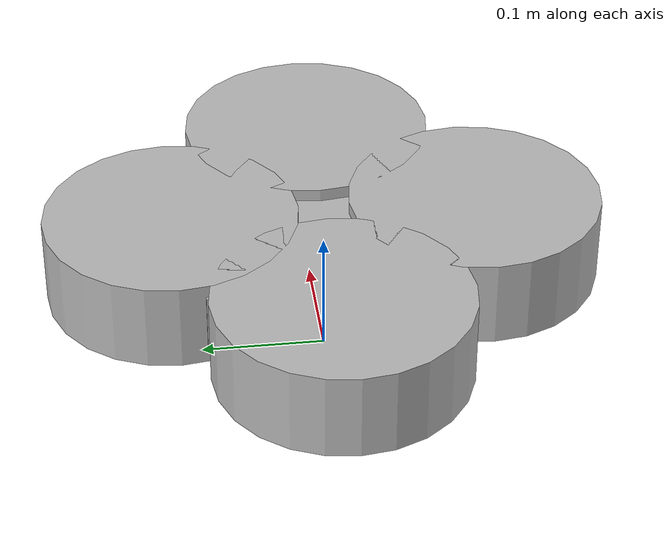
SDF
<?xml version='1.0'?>
<sdf version='1.4'>
	<model name="simple_quad">
		<pose>0 0 .1 0 0 0</pose>

		<link name="chassis">
			<velocity_decay>
				<linear>0.001</linear>
			</velocity_decay>

			<inertial><!-- Converted to SI from Paparazzi's ARDrone model for JSBsim -->
				<mass>0.4</mass>
				<inertia>
					<ixx> 0.00678 </ixx>
					<iyy> 0.00678 </iyy>
					<izz> 0.01356 </izz>
					<ixy> 0. </ixy>
					<ixz> 0. </ixz>
					<iyz> 0. </iyz>
				</inertia>
			</inertial>

			<collision name="collision">
				<geometry>
					<box>
						<size>0.4 0.4 0.05</size>
					</box>
				</geometry>
			</collision>

			<visual name="visual">
				<geometry>
					<box>
						<size>0.2 0.2 0.05</size>
					</box>
				</geometry>
			</visual>

			<sensor name="contactsensor" type="contact">
				<contact>
					<collision>collision</collision>
				</contact>
			</sensor>
		</link>

		<!-- MOTORS -->
		<link name="front_motor">
			<pose>0.12 0 0 0 0 0</pose>
			<inertial>
				<mass>0.01</mass>
				<inertia>
					<ixx>0.0001</ixx>
					<iyy>0.0001</iyy>
					<izz>0.0001</izz>
					<ixy>0</ixy>
					<iyz>0</iyz>
					<ixz>0</ixz>
				</inertia>
			</inertial>
			<visual name="visual">
				<geometry>
					<cylinder>
						<radius>0.10</radius>
						<length>0.07</length>
					</cylinder>
				</geometry>
			</visual>
		</link>

		<joint type="fixed" name="front_motor_joint">
			<parent>chassis</parent>
			<child>front_motor</child>
		</joint>

		<link name="back_motor">
			<pose>-0.12 0 0 0 0 0</pose>
			<inertial>
				<mass>0.01</mass>
				<inertia>
					<ixx>0.0001</ixx>
					<iyy>0.0001</iyy>
					<izz>0.0001</izz>
					<ixy>0</ixy>
					<iyz>0</iyz>
					<ixz>0</ixz>
				</inertia>
			</inertial>
			<visual name="visual">
				<geometry>
					<cylinder>
						<radius>0.10</radius>
						<length>0.07</length>
					</cylinder>
				</geometry>
			</visual>
		</link>

		<joint type="fixed" name="back_motor_joint">
			<parent>chassis</parent>
			<child>back_motor</child>
		</joint>

		<link name="right_motor">
			<pose>0 -0.12 0 0 0 0</pose>
			<inertial>
				<mass>0.01</mass>
				<inertia>
					<ixx>0.0001</ixx>
					<iyy>0.0001</iyy>
					<izz>0.0001</izz>
					<ixy>0</ixy>
					<iyz>0</iyz>
					<ixz>0</ixz>
				</inertia>
			</inertial>
			<visual name="visual">
				<geometry>
					<cylinder>
						<radius>0.10</radius>
						<length>0.07</length>
					</cylinder>
				</geometry>
			</visual>
		</link>

		<joint type="fixed" name="right_motor_joint">
			<parent>chassis</parent>
			<child>right_motor</child>
		</joint>

		<link name="left_motor">
			<pose>0 0.12 0 0 0 0</pose>
			<inertial>
				<mass>0.01</mass>
				<inertia>
					<ixx>0.0001</ixx>
					<iyy>0.0001</iyy>
					<izz>0.0001</izz>
					<ixy>0</ixy>
					<iyz>0</iyz>
					<ixz>0</ixz>
				</inertia>
			</inertial>
			<visual name="visual">
				<geometry>
					<cylinder>
						<radius>0.10</radius>
						<length>0.07</length>
					</cylinder>
				</geometry>
			</visual>
		</link>

		<joint type="fixed" name="left_motor_joint">
			<parent>chassis</parent>
			<child>left_motor</child>
		</joint>

		<!-- CAMERAS -->

		<link name="front_camera">
			<pose>0.15 0 0 0 0 0</pose>
			<inertial>
				<mass>0.001</mass>
				<inertia>
					<ixx>0.0001</ixx>
					<iyy>0.0001</iyy>
					<izz>0.0001</izz>
					<ixy>0</ixy>
					<iyz>0</iyz>
					<ixz>0</ixz>
				</inertia>
			</inertial>
			<sensor type="camera" name="front_camera">
				<update_rate>30.0</update_rate>
				<camera name="front_camera">
					<horizontal_fov>1.3962634</horizontal_fov>
					<image>
						<width>1280</width>
						<height>720</height>
						<format>R8G8B8</format>
					</image>
					<clip>
						<near>0.02</near>
						<far>300</far>
					</clip>
					<noise>
						<type>gaussian</type>
						<!-- Noise is sampled independently per pixel on each frame. That pixel's
							noise value is added to each of its color channels, which at that point lie
							in the range [0,1]. -->
						<mean>0.0</mean>
						<stddev>0.007</stddev>
					</noise>
				</camera>
			</sensor>
		</link>

		<joint name="front_camera_joint" type="fixed">
			<parent>chassis</parent>
			<child>front_camera</child>
		</joint>

		<link name="bottom_camera">
			<pose>0 0 -.03 0 1.57 0</pose>
			<inertial>
				<mass>0.001</mass>
				<inertia>
					<ixx>0.0001</ixx>
					<iyy>0.0001</iyy>
					<izz>0.0001</izz>
					<ixy>0</ixy>
					<iyz>0</iyz>
					<ixz>0</ixz>
				</inertia>
			</inertial>
			<sensor type="camera" name="bottom_camera">
				<update_rate>30.0</update_rate>
				<camera name="bottom_camera">
					<horizontal_fov>1.3962634</horizontal_fov>
					<image>
						<width>320</width>
						<height>240</height>
						<format>R8G8B8</format>
					</image>
					<clip>
						<near>0.02</near>
						<far>300</far>
					</clip>
					<noise>
						<type>gaussian</type>
						<!-- Noise is sampled independently per pixel on each frame. That pixel's
							noise value is added to each of its color channels, which at that point lie
							in the range [0,1]. -->
						<mean>0.0</mean>
						<stddev>0.007</stddev>
					</noise>
				</camera>
			</sensor>
		</link>

		<joint name="bottom_camera_joint" type="fixed">
			<parent>chassis</parent>
			<child>bottom_camera</child>
		</joint>
    <!-- STEREOCAMERA -->
    <include>
      <uri>model://stereo_camera</uri>
      <pose>0 0 0 0 0 0</pose>
    </include>
		<joint name="stereo_camera_joint" type="fixed">
			<parent>chassis</parent>
			<child>stereo_camera::base</child>
		</joint>
	</model>
</sdf>

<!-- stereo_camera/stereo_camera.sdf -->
<sdf version='1.4'>
	<model name="stereo_camera">

		<link name="base">
			<inertial><!-- Taken from Paparazzi's ARDrone model for JSBsim -->
				<mass>0.001</mass>
				<inertia>
					<ixx> 0.005 </ixx>
					<iyy> 0.005 </iyy>
					<izz> 0.010 </izz>
					<ixy> 0. </ixy>
					<ixz> 0. </ixz>
					<iyz> 0. </iyz>
				</inertia>
			</inertial>

			<collision name="collision">
				<geometry>
					<box>
						<size>0.4 0.4 0.05</size>
					</box>
				</geometry>
			</collision>

		</link>

<!-- STEREO CAMERA -->
		<link name="stereo_camera">
			<pose>0.15 0 0 0 0 0</pose>
			<inertial>
				<mass>0.001</mass>
				<inertia>
					<ixx>.0001</ixx>
					<iyy>.0001</iyy>
					<izz>.0001</izz>
					<ixy>0</ixy>
					<iyz>0</iyz>
					<ixz>0</ixz>
				</inertia>
			</inertial>
     <sensor type="multicamera" name="stereo_camera">
      <update_rate>25.0</update_rate>
      <camera name="left">
        <pose>0 0.03 0 0 0 0</pose>
        <horizontal_fov>1.001819 </horizontal_fov>
        <image>
          <width>128</width>
          <height>96</height>
          <format>R8G8B8</format>
        </image>
        <clip>
          <near>0.02</near>
          <far>300</far>
        </clip>
        <noise>
          <type>gaussian</type>
          <mean>0.0</mean>
          <stddev>0.01</stddev>
        </noise>
      </camera>
      <camera name="right">
        <pose>0 -0.03 0 0 0 0</pose>
        <horizontal_fov>1.001819 </horizontal_fov>
        <image>
          <width>128</width>
          <height>96</height>
          <format>R8G8B8</format>
        </image>
        <clip>
          <near>0.02</near>
          <far>300</far>
        </clip>
        <noise>
          <type>gaussian</type>
          <mean>0.0</mean>
          <stddev>0.01</stddev>
        </noise>
      </camera>
			</sensor>
		</link>

		<joint name="stereo_camera_joint" type="fixed">
			<parent>base</parent>
			<child>stereo_camera</child>
		</joint>

	</model>
</sdf>
